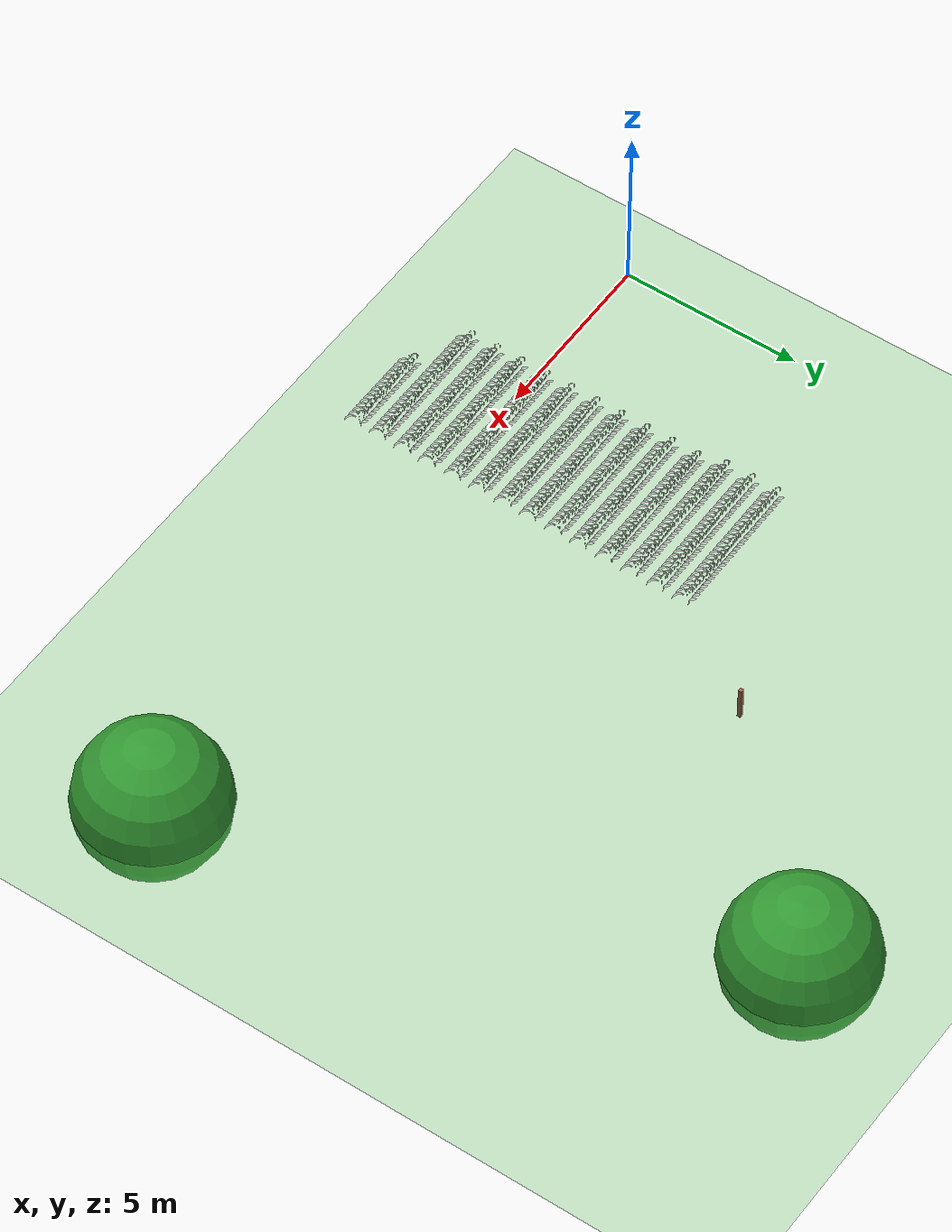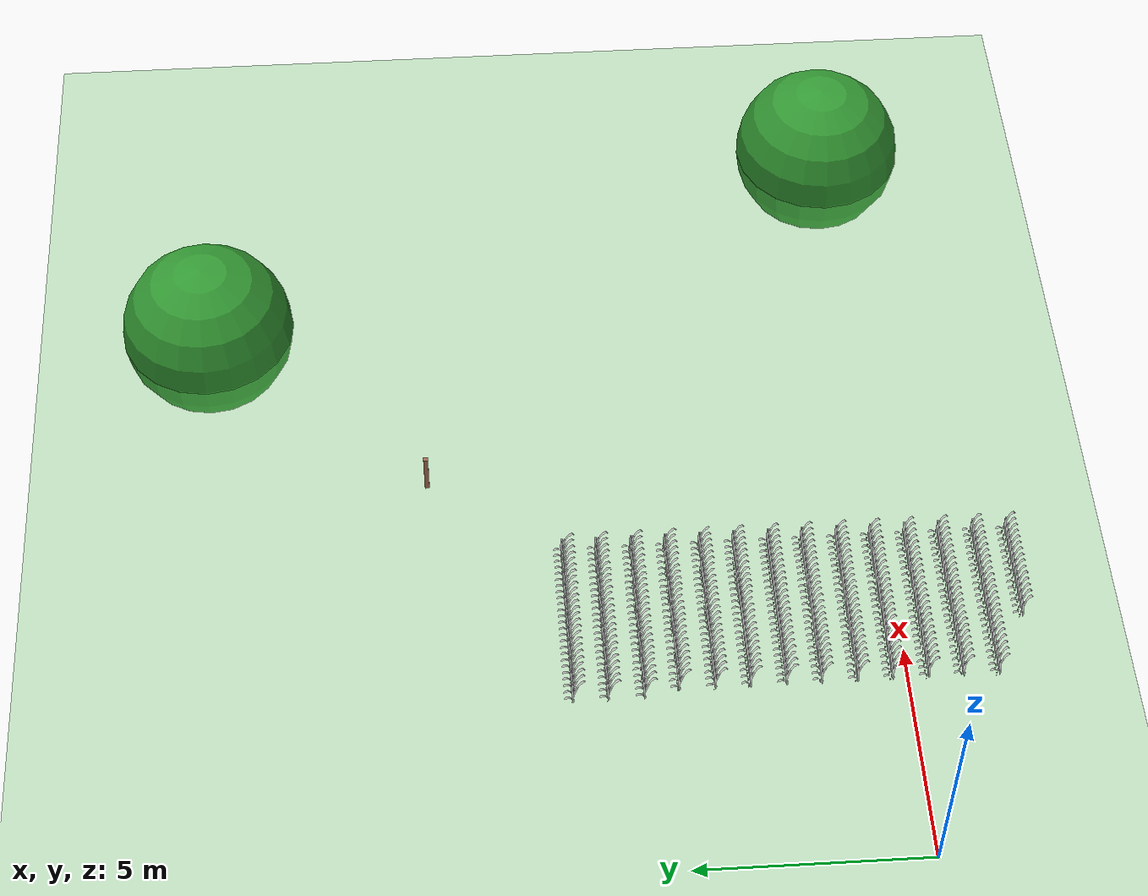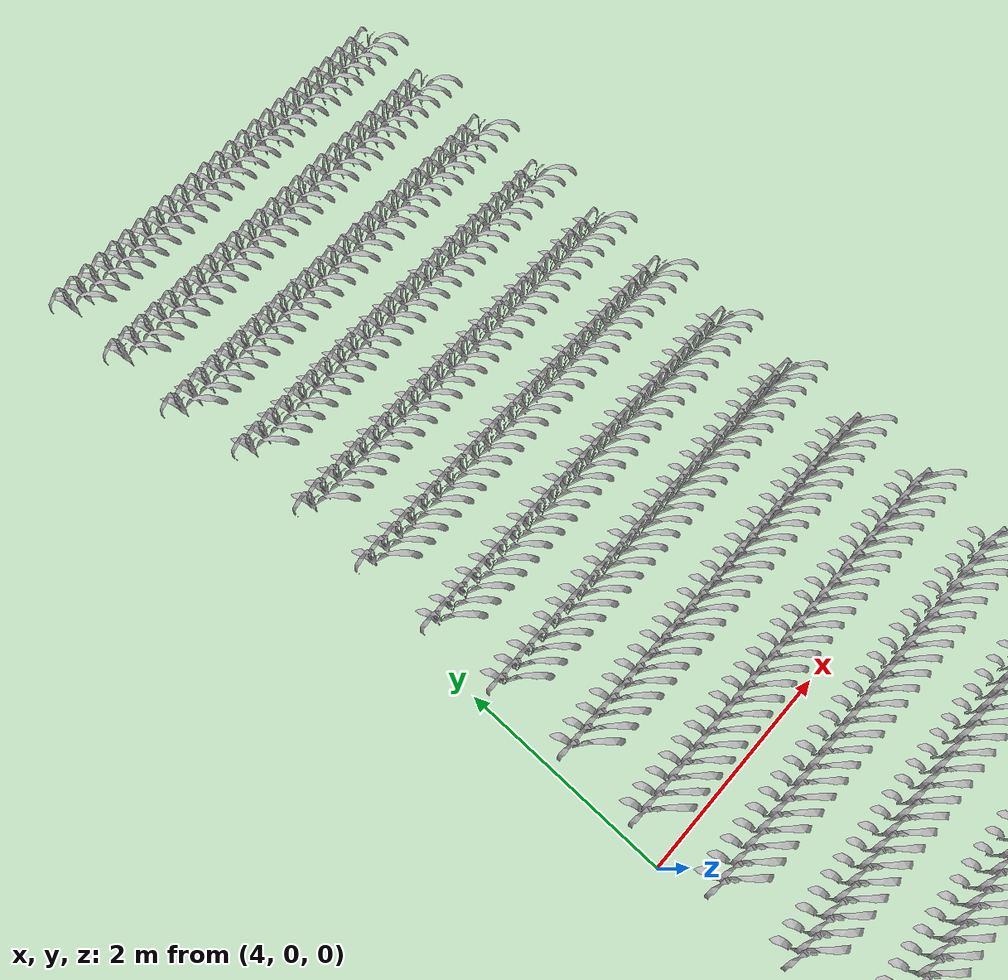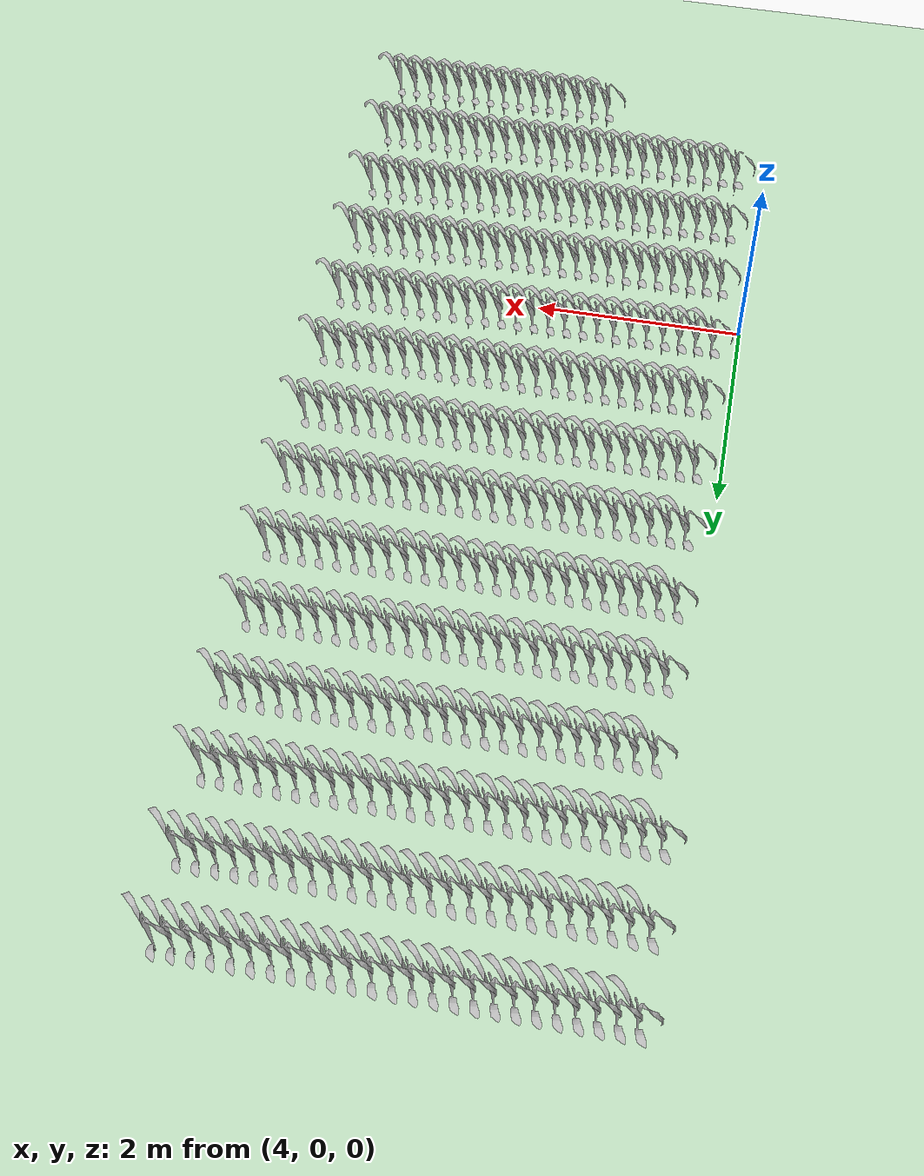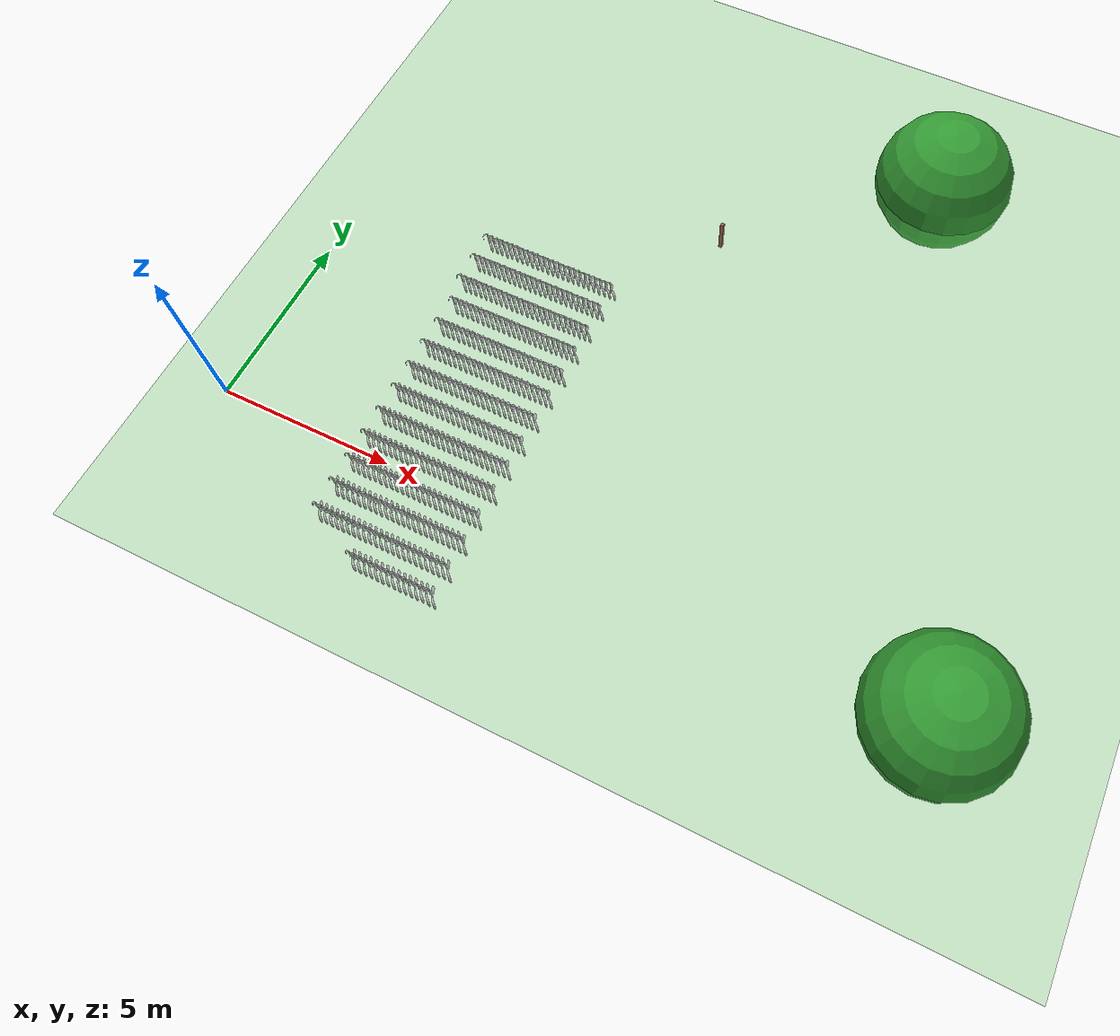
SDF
<sdf version="1.9">
 <world name="farm_world">
  <model name="ground_plane">
   <static>true</static>
   <link name="link">
    <collision name="collision">
     <geometry><plane><normal>0 0 1</normal><size>100 100</size></plane></geometry>
    </collision>
    <visual name="visual">
     <geometry><plane><normal>0 0 1</normal><size>100 100</size></plane></geometry>
     <material>
      <ambient>0.2 0.6 0.2 1</ambient>
      <diffuse>0.3 0.7 0.3 1</diffuse>
      <specular>0.1 0.1 0.1 1</specular>
     </material>
    </visual>
   </link>
  </model>
  <model name="fence_post_1">
   <pose>10 10 0.5 0 0 0</pose>
   <static>true</static>
   <link name="link">
    <collision name="collision"><geometry><box><size>0.1 0.1 1.0</size></box></geometry></collision>
    <visual name="visual">
     <geometry><box><size>0.1 0.1 1.0</size></box></geometry>
     <material><ambient>0.4 0.3 0.2 1</ambient><diffuse>0.6 0.4 0.3 1</diffuse></material>
    </visual>
   </link>
  </model>
  <include><uri>model://maize_01</uri><name>maize_685</name><pose>5.68 -2.62 0 0 0 0</pose></include>
  <include><uri>model://maize_01</uri><name>maize_686</name><pose>5.84 -2.62 0 0 0 0</pose></include>
  <include><uri>model://maize_01</uri><name>maize_687</name><pose>6.00 -2.62 0 0 0 0</pose></include>
  <include><uri>model://maize_01</uri><name>maize_688</name><pose>6.16 -2.62 0 0 0 0</pose></include>
  <include><uri>model://maize_01</uri><name>maize_689</name><pose>6.32 -2.62 0 0 0 0</pose></include>
  <include><uri>model://maize_01</uri><name>maize_690</name><pose>6.48 -2.62 0 0 0 0</pose></include>
  <include><uri>model://maize_01</uri><name>maize_691</name><pose>6.64 -2.62 0 0 0 0</pose></include>
  <include><uri>model://maize_01</uri><name>maize_692</name><pose>6.80 -2.62 0 0 0 0</pose></include>
  <include><uri>model://maize_01</uri><name>maize_693</name><pose>6.96 -2.62 0 0 0 0</pose></include>
  <include><uri>model://maize_01</uri><name>maize_694</name><pose>7.12 -2.62 0 0 0 0</pose></include>
  <include><uri>model://maize_01</uri><name>maize_695</name><pose>7.28 -2.62 0 0 0 0</pose></include>
  <include><uri>model://maize_01</uri><name>maize_696</name><pose>7.44 -2.62 0 0 0 0</pose></include>
  <include><uri>model://maize_01</uri><name>maize_697</name><pose>7.60 -2.62 0 0 0 0</pose></include>
  <include><uri>model://maize_01</uri><name>maize_698</name><pose>7.76 -2.62 0 0 0 0</pose></include>
  <include><uri>model://maize_01</uri><name>maize_699</name><pose>7.92 -2.62 0 0 0 0</pose></include>
  <include><uri>model://maize_01</uri><name>maize_776</name><pose>4.24 -1.88 0 0 0 0</pose></include>
  <include><uri>model://maize_01</uri><name>maize_777</name><pose>4.40 -1.88 0 0 0 0</pose></include>
  <include><uri>model://maize_01</uri><name>maize_778</name><pose>4.56 -1.88 0 0 0 0</pose></include>
  <include><uri>model://maize_01</uri><name>maize_779</name><pose>4.72 -1.88 0 0 0 0</pose></include>
  <include><uri>model://maize_01</uri><name>maize_780</name><pose>4.88 -1.88 0 0 0 0</pose></include>
  <include><uri>model://maize_01</uri><name>maize_781</name><pose>5.04 -1.88 0 0 0 0</pose></include>
  <include><uri>model://maize_01</uri><name>maize_782</name><pose>5.20 -1.88 0 0 0 0</pose></include>
  <include><uri>model://maize_01</uri><name>maize_783</name><pose>5.36 -1.88 0 0 0 0</pose></include>
  <include><uri>model://maize_01</uri><name>maize_784</name><pose>5.52 -1.88 0 0 0 0</pose></include>
  <include><uri>model://maize_01</uri><name>maize_785</name><pose>5.68 -1.88 0 0 0 0</pose></include>
  <include><uri>model://maize_01</uri><name>maize_786</name><pose>5.84 -1.88 0 0 0 0</pose></include>
  <include><uri>model://maize_01</uri><name>maize_787</name><pose>6.00 -1.88 0 0 0 0</pose></include>
  <include><uri>model://maize_01</uri><name>maize_788</name><pose>6.16 -1.88 0 0 0 0</pose></include>
  <include><uri>model://maize_01</uri><name>maize_789</name><pose>6.32 -1.88 0 0 0 0</pose></include>
  <include><uri>model://maize_01</uri><name>maize_790</name><pose>6.48 -1.88 0 0 0 0</pose></include>
  <include><uri>model://maize_01</uri><name>maize_791</name><pose>6.64 -1.88 0 0 0 0</pose></include>
  <include><uri>model://maize_01</uri><name>maize_792</name><pose>6.80 -1.88 0 0 0 0</pose></include>
  <include><uri>model://maize_01</uri><name>maize_793</name><pose>6.96 -1.88 0 0 0 0</pose></include>
  <include><uri>model://maize_01</uri><name>maize_794</name><pose>7.12 -1.88 0 0 0 0</pose></include>
  <include><uri>model://maize_01</uri><name>maize_795</name><pose>7.28 -1.88 0 0 0 0</pose></include>
  <include><uri>model://maize_01</uri><name>maize_796</name><pose>7.44 -1.88 0 0 0 0</pose></include>
  <include><uri>model://maize_01</uri><name>maize_797</name><pose>7.60 -1.88 0 0 0 0</pose></include>
  <include><uri>model://maize_01</uri><name>maize_798</name><pose>7.76 -1.88 0 0 0 0</pose></include>
  <include><uri>model://maize_01</uri><name>maize_799</name><pose>7.92 -1.88 0 0 0 0</pose></include>
  <include><uri>model://maize_01</uri><name>maize_876</name><pose>4.24 -1.12 0 0 0 0</pose></include>
  <include><uri>model://maize_01</uri><name>maize_877</name><pose>4.40 -1.12 0 0 0 0</pose></include>
  <include><uri>model://maize_01</uri><name>maize_878</name><pose>4.56 -1.12 0 0 0 0</pose></include>
  <include><uri>model://maize_01</uri><name>maize_879</name><pose>4.72 -1.12 0 0 0 0</pose></include>
  <include><uri>model://maize_01</uri><name>maize_880</name><pose>4.88 -1.12 0 0 0 0</pose></include>
  <include><uri>model://maize_01</uri><name>maize_881</name><pose>5.04 -1.12 0 0 0 0</pose></include>
  <include><uri>model://maize_01</uri><name>maize_882</name><pose>5.20 -1.12 0 0 0 0</pose></include>
  <include><uri>model://maize_01</uri><name>maize_883</name><pose>5.36 -1.12 0 0 0 0</pose></include>
  <include><uri>model://maize_01</uri><name>maize_884</name><pose>5.52 -1.12 0 0 0 0</pose></include>
  <include><uri>model://maize_01</uri><name>maize_885</name><pose>5.68 -1.12 0 0 0 0</pose></include>
  <include><uri>model://maize_01</uri><name>maize_886</name><pose>5.84 -1.12 0 0 0 0</pose></include>
  <include><uri>model://maize_01</uri><name>maize_887</name><pose>6.00 -1.12 0 0 0 0</pose></include>
  <include><uri>model://maize_01</uri><name>maize_888</name><pose>6.16 -1.12 0 0 0 0</pose></include>
  <include><uri>model://maize_01</uri><name>maize_889</name><pose>6.32 -1.12 0 0 0 0</pose></include>
  <include><uri>model://maize_01</uri><name>maize_890</name><pose>6.48 -1.12 0 0 0 0</pose></include>
  <include><uri>model://maize_01</uri><name>maize_891</name><pose>6.64 -1.12 0 0 0 0</pose></include>
  <include><uri>model://maize_01</uri><name>maize_892</name><pose>6.80 -1.12 0 0 0 0</pose></include>
  <include><uri>model://maize_01</uri><name>maize_893</name><pose>6.96 -1.12 0 0 0 0</pose></include>
  <include><uri>model://maize_01</uri><name>maize_894</name><pose>7.12 -1.12 0 0 0 0</pose></include>
  <include><uri>model://maize_01</uri><name>maize_895</name><pose>7.28 -1.12 0 0 0 0</pose></include>
  <include><uri>model://maize_01</uri><name>maize_896</name><pose>7.44 -1.12 0 0 0 0</pose></include>
  <include><uri>model://maize_01</uri><name>maize_897</name><pose>7.60 -1.12 0 0 0 0</pose></include>
  <include><uri>model://maize_01</uri><name>maize_898</name><pose>7.76 -1.12 0 0 0 0</pose></include>
  <include><uri>model://maize_01</uri><name>maize_899</name><pose>7.92 -1.12 0 0 0 0</pose></include>
  <include><uri>model://maize_01</uri><name>maize_976</name><pose>4.24 -0.38 0 0 0 0</pose></include>
  <include><uri>model://maize_01</uri><name>maize_977</name><pose>4.40 -0.38 0 0 0 0</pose></include>
  <include><uri>model://maize_01</uri><name>maize_978</name><pose>4.56 -0.38 0 0 0 0</pose></include>
  <include><uri>model://maize_01</uri><name>maize_979</name><pose>4.72 -0.38 0 0 0 0</pose></include>
  <include><uri>model://maize_01</uri><name>maize_980</name><pose>4.88 -0.38 0 0 0 0</pose></include>
  <include><uri>model://maize_01</uri><name>maize_981</name><pose>5.04 -0.38 0 0 0 0</pose></include>
  <include><uri>model://maize_01</uri><name>maize_982</name><pose>5.20 -0.38 0 0 0 0</pose></include>
  <include><uri>model://maize_01</uri><name>maize_983</name><pose>5.36 -0.38 0 0 0 0</pose></include>
  <include><uri>model://maize_01</uri><name>maize_984</name><pose>5.52 -0.38 0 0 0 0</pose></include>
  <include><uri>model://maize_01</uri><name>maize_985</name><pose>5.68 -0.38 0 0 0 0</pose></include>
  <include><uri>model://maize_01</uri><name>maize_986</name><pose>5.84 -0.38 0 0 0 0</pose></include>
  <include><uri>model://maize_01</uri><name>maize_987</name><pose>6.00 -0.38 0 0 0 0</pose></include>
  <include><uri>model://maize_01</uri><name>maize_988</name><pose>6.16 -0.38 0 0 0 0</pose></include>
  <include><uri>model://maize_01</uri><name>maize_989</name><pose>6.32 -0.38 0 0 0 0</pose></include>
  <include><uri>model://maize_01</uri><name>maize_990</name><pose>6.48 -0.38 0 0 0 0</pose></include>
  <include><uri>model://maize_01</uri><name>maize_991</name><pose>6.64 -0.38 0 0 0 0</pose></include>
  <include><uri>model://maize_01</uri><name>maize_992</name><pose>6.80 -0.38 0 0 0 0</pose></include>
  <include><uri>model://maize_01</uri><name>maize_993</name><pose>6.96 -0.38 0 0 0 0</pose></include>
  <include><uri>model://maize_01</uri><name>maize_994</name><pose>7.12 -0.38 0 0 0 0</pose></include>
  <include><uri>model://maize_01</uri><name>maize_995</name><pose>7.28 -0.38 0 0 0 0</pose></include>
  <include><uri>model://maize_01</uri><name>maize_996</name><pose>7.44 -0.38 0 0 0 0</pose></include>
  <include><uri>model://maize_01</uri><name>maize_997</name><pose>7.60 -0.38 0 0 0 0</pose></include>
  <include><uri>model://maize_01</uri><name>maize_998</name><pose>7.76 -0.38 0 0 0 0</pose></include>
  <include><uri>model://maize_01</uri><name>maize_999</name><pose>7.92 -0.38 0 0 0 0</pose></include>
  <include><uri>model://maize_01</uri><name>maize_1076</name><pose>4.24 0.38 0 0 0 0</pose></include>
  <include><uri>model://maize_01</uri><name>maize_1077</name><pose>4.40 0.38 0 0 0 0</pose></include>
  <include><uri>model://maize_01</uri><name>maize_1078</name><pose>4.56 0.38 0 0 0 0</pose></include>
  <include><uri>model://maize_01</uri><name>maize_1079</name><pose>4.72 0.38 0 0 0 0</pose></include>
  <include><uri>model://maize_01</uri><name>maize_1080</name><pose>4.88 0.38 0 0 0 0</pose></include>
  <include><uri>model://maize_01</uri><name>maize_1081</name><pose>5.04 0.38 0 0 0 0</pose></include>
  <include><uri>model://maize_01</uri><name>maize_1082</name><pose>5.20 0.38 0 0 0 0</pose></include>
  <include><uri>model://maize_01</uri><name>maize_1083</name><pose>5.36 0.38 0 0 0 0</pose></include>
  <include><uri>model://maize_01</uri><name>maize_1084</name><pose>5.52 0.38 0 0 0 0</pose></include>
  <include><uri>model://maize_01</uri><name>maize_1085</name><pose>5.68 0.38 0 0 0 0</pose></include>
  <include><uri>model://maize_01</uri><name>maize_1086</name><pose>5.84 0.38 0 0 0 0</pose></include>
  <include><uri>model://maize_01</uri><name>maize_1087</name><pose>6.00 0.38 0 0 0 0</pose></include>
  <include><uri>model://maize_01</uri><name>maize_1088</name><pose>6.16 0.38 0 0 0 0</pose></include>
  <include><uri>model://maize_01</uri><name>maize_1089</name><pose>6.32 0.38 0 0 0 0</pose></include>
  <include><uri>model://maize_01</uri><name>maize_1090</name><pose>6.48 0.38 0 0 0 0</pose></include>
  <include><uri>model://maize_01</uri><name>maize_1091</name><pose>6.64 0.38 0 0 0 0</pose></include>
  <include><uri>model://maize_01</uri><name>maize_1092</name><pose>6.80 0.38 0 0 0 0</pose></include>
  <include><uri>model://maize_01</uri><name>maize_1093</name><pose>6.96 0.38 0 0 0 0</pose></include>
  <include><uri>model://maize_01</uri><name>maize_1094</name><pose>7.12 0.38 0 0 0 0</pose></include>
  <include><uri>model://maize_01</uri><name>maize_1095</name><pose>7.28 0.38 0 0 0 0</pose></include>
  <include><uri>model://maize_01</uri><name>maize_1096</name><pose>7.44 0.38 0 0 0 0</pose></include>
  <include><uri>model://maize_01</uri><name>maize_1097</name><pose>7.60 0.38 0 0 0 0</pose></include>
  <include><uri>model://maize_01</uri><name>maize_1098</name><pose>7.76 0.38 0 0 0 0</pose></include>
  <include><uri>model://maize_01</uri><name>maize_1099</name><pose>7.92 0.38 0 0 0 0</pose></include>
  <include><uri>model://maize_01</uri><name>maize_1176</name><pose>4.24 1.12 0 0 0 0</pose></include>
  <include><uri>model://maize_01</uri><name>maize_1177</name><pose>4.40 1.12 0 0 0 0</pose></include>
  <include><uri>model://maize_01</uri><name>maize_1178</name><pose>4.56 1.12 0 0 0 0</pose></include>
  <include><uri>model://maize_01</uri><name>maize_1179</name><pose>4.72 1.12 0 0 0 0</pose></include>
  <include><uri>model://maize_01</uri><name>maize_1180</name><pose>4.88 1.12 0 0 0 0</pose></include>
  <include><uri>model://maize_01</uri><name>maize_1181</name><pose>5.04 1.12 0 0 0 0</pose></include>
  <include><uri>model://maize_01</uri><name>maize_1182</name><pose>5.20 1.12 0 0 0 0</pose></include>
  <include><uri>model://maize_01</uri><name>maize_1183</name><pose>5.36 1.12 0 0 0 0</pose></include>
  <include><uri>model://maize_01</uri><name>maize_1184</name><pose>5.52 1.12 0 0 0 0</pose></include>
  <include><uri>model://maize_01</uri><name>maize_1185</name><pose>5.68 1.12 0 0 0 0</pose></include>
  <include><uri>model://maize_01</uri><name>maize_1186</name><pose>5.84 1.12 0 0 0 0</pose></include>
  <include><uri>model://maize_01</uri><name>maize_1187</name><pose>6.00 1.12 0 0 0 0</pose></include>
  <include><uri>model://maize_01</uri><name>maize_1188</name><pose>6.16 1.12 0 0 0 0</pose></include>
  <include><uri>model://maize_01</uri><name>maize_1189</name><pose>6.32 1.12 0 0 0 0</pose></include>
  <include><uri>model://maize_01</uri><name>maize_1190</name><pose>6.48 1.12 0 0 0 0</pose></include>
  <include><uri>model://maize_01</uri><name>maize_1191</name><pose>6.64 1.12 0 0 0 0</pose></include>
  <include><uri>model://maize_01</uri><name>maize_1192</name><pose>6.80 1.12 0 0 0 0</pose></include>
  <include><uri>model://maize_01</uri><name>maize_1193</name><pose>6.96 1.12 0 0 0 0</pose></include>
  <include><uri>model://maize_01</uri><name>maize_1194</name><pose>7.12 1.12 0 0 0 0</pose></include>
  <include><uri>model://maize_01</uri><name>maize_1195</name><pose>7.28 1.12 0 0 0 0</pose></include>
  <include><uri>model://maize_01</uri><name>maize_1196</name><pose>7.44 1.12 0 0 0 0</pose></include>
  <include><uri>model://maize_01</uri><name>maize_1197</name><pose>7.60 1.12 0 0 0 0</pose></include>
  <include><uri>model://maize_01</uri><name>maize_1198</name><pose>7.76 1.12 0 0 0 0</pose></include>
  <include><uri>model://maize_01</uri><name>maize_1199</name><pose>7.92 1.12 0 0 0 0</pose></include>
  <include><uri>model://maize_01</uri><name>maize_1276</name><pose>4.24 1.88 0 0 0 0</pose></include>
  <include><uri>model://maize_01</uri><name>maize_1277</name><pose>4.40 1.88 0 0 0 0</pose></include>
  <include><uri>model://maize_01</uri><name>maize_1278</name><pose>4.56 1.88 0 0 0 0</pose></include>
  <include><uri>model://maize_01</uri><name>maize_1279</name><pose>4.72 1.88 0 0 0 0</pose></include>
  <include><uri>model://maize_01</uri><name>maize_1280</name><pose>4.88 1.88 0 0 0 0</pose></include>
  <include><uri>model://maize_01</uri><name>maize_1281</name><pose>5.04 1.88 0 0 0 0</pose></include>
  <include><uri>model://maize_01</uri><name>maize_1282</name><pose>5.20 1.88 0 0 0 0</pose></include>
  <include><uri>model://maize_01</uri><name>maize_1283</name><pose>5.36 1.88 0 0 0 0</pose></include>
  <include><uri>model://maize_01</uri><name>maize_1284</name><pose>5.52 1.88 0 0 0 0</pose></include>
  <include><uri>model://maize_01</uri><name>maize_1285</name><pose>5.68 1.88 0 0 0 0</pose></include>
  <include><uri>model://maize_01</uri><name>maize_1286</name><pose>5.84 1.88 0 0 0 0</pose></include>
  <include><uri>model://maize_01</uri><name>maize_1287</name><pose>6.00 1.88 0 0 0 0</pose></include>
  <include><uri>model://maize_01</uri><name>maize_1288</name><pose>6.16 1.88 0 0 0 0</pose></include>
  <include><uri>model://maize_01</uri><name>maize_1289</name><pose>6.32 1.88 0 0 0 0</pose></include>
  <include><uri>model://maize_01</uri><name>maize_1290</name><pose>6.48 1.88 0 0 0 0</pose></include>
  <include><uri>model://maize_01</uri><name>maize_1291</name><pose>6.64 1.88 0 0 0 0</pose></include>
  <include><uri>model://maize_01</uri><name>maize_1292</name><pose>6.80 1.88 0 0 0 0</pose></include>
  <include><uri>model://maize_01</uri><name>maize_1293</name><pose>6.96 1.88 0 0 0 0</pose></include>
  <include><uri>model://maize_01</uri><name>maize_1294</name><pose>7.12 1.88 0 0 0 0</pose></include>
  <include><uri>model://maize_01</uri><name>maize_1295</name><pose>7.28 1.88 0 0 0 0</pose></include>
  <include><uri>model://maize_01</uri><name>maize_1296</name><pose>7.44 1.88 0 0 0 0</pose></include>
  <include><uri>model://maize_01</uri><name>maize_1297</name><pose>7.60 1.88 0 0 0 0</pose></include>
  <include><uri>model://maize_01</uri><name>maize_1298</name><pose>7.76 1.88 0 0 0 0</pose></include>
  <include><uri>model://maize_01</uri><name>maize_1299</name><pose>7.92 1.88 0 0 0 0</pose></include>
  <include><uri>model://maize_01</uri><name>maize_1376</name><pose>4.24 2.62 0 0 0 0</pose></include>
  <include><uri>model://maize_01</uri><name>maize_1377</name><pose>4.40 2.62 0 0 0 0</pose></include>
  <include><uri>model://maize_01</uri><name>maize_1378</name><pose>4.56 2.62 0 0 0 0</pose></include>
  <include><uri>model://maize_01</uri><name>maize_1379</name><pose>4.72 2.62 0 0 0 0</pose></include>
  <include><uri>model://maize_01</uri><name>maize_1380</name><pose>4.88 2.62 0 0 0 0</pose></include>
  <include><uri>model://maize_01</uri><name>maize_1381</name><pose>5.04 2.62 0 0 0 0</pose></include>
  <include><uri>model://maize_01</uri><name>maize_1382</name><pose>5.20 2.62 0 0 0 0</pose></include>
  <include><uri>model://maize_01</uri><name>maize_1383</name><pose>5.36 2.62 0 0 0 0</pose></include>
  <include><uri>model://maize_01</uri><name>maize_1384</name><pose>5.52 2.62 0 0 0 0</pose></include>
  <include><uri>model://maize_01</uri><name>maize_1385</name><pose>5.68 2.62 0 0 0 0</pose></include>
  <include><uri>model://maize_01</uri><name>maize_1386</name><pose>5.84 2.62 0 0 0 0</pose></include>
  <include><uri>model://maize_01</uri><name>maize_1387</name><pose>6.00 2.62 0 0 0 0</pose></include>
  <include><uri>model://maize_01</uri><name>maize_1388</name><pose>6.16 2.62 0 0 0 0</pose></include>
  <include><uri>model://maize_01</uri><name>maize_1389</name><pose>6.32 2.62 0 0 0 0</pose></include>
  <include><uri>model://maize_01</uri><name>maize_1390</name><pose>6.48 2.62 0 0 0 0</pose></include>
  <include><uri>model://maize_01</uri><name>maize_1391</name><pose>6.64 2.62 0 0 0 0</pose></include>
  <include><uri>model://maize_01</uri><name>maize_1392</name><pose>6.80 2.62 0 0 0 0</pose></include>
  <include><uri>model://maize_01</uri><name>maize_1393</name><pose>6.96 2.62 0 0 0 0</pose></include>
  <include><uri>model://maize_01</uri><name>maize_1394</name><pose>7.12 2.62 0 0 0 0</pose></include>
  <include><uri>model://maize_01</uri><name>maize_1395</name><pose>7.28 2.62 0 0 0 0</pose></include>
  <include><uri>model://maize_01</uri><name>maize_1396</name><pose>7.44 2.62 0 0 0 0</pose></include>
  <include><uri>model://maize_01</uri><name>maize_1397</name><pose>7.60 2.62 0 0 0 0</pose></include>
  <include><uri>model://maize_01</uri><name>maize_1398</name><pose>7.76 2.62 0 0 0 0</pose></include>
  <include><uri>model://maize_01</uri><name>maize_1399</name><pose>7.92 2.62 0 0 0 0</pose></include>
  <include><uri>model://maize_01</uri><name>maize_1476</name><pose>4.24 3.38 0 0 0 0</pose></include>
  <include><uri>model://maize_01</uri><name>maize_1477</name><pose>4.40 3.38 0 0 0 0</pose></include>
  <include><uri>model://maize_01</uri><name>maize_1478</name><pose>4.56 3.38 0 0 0 0</pose></include>
  <include><uri>model://maize_01</uri><name>maize_1479</name><pose>4.72 3.38 0 0 0 0</pose></include>
  <include><uri>model://maize_01</uri><name>maize_1480</name><pose>4.88 3.38 0 0 0 0</pose></include>
  <include><uri>model://maize_01</uri><name>maize_1481</name><pose>5.04 3.38 0 0 0 0</pose></include>
  <include><uri>model://maize_01</uri><name>maize_1482</name><pose>5.20 3.38 0 0 0 0</pose></include>
  <include><uri>model://maize_01</uri><name>maize_1483</name><pose>5.36 3.38 0 0 0 0</pose></include>
  <include><uri>model://maize_01</uri><name>maize_1484</name><pose>5.52 3.38 0 0 0 0</pose></include>
  <include><uri>model://maize_01</uri><name>maize_1485</name><pose>5.68 3.38 0 0 0 0</pose></include>
  <include><uri>model://maize_01</uri><name>maize_1486</name><pose>5.84 3.38 0 0 0 0</pose></include>
  <include><uri>model://maize_01</uri><name>maize_1487</name><pose>6.00 3.38 0 0 0 0</pose></include>
  <include><uri>model://maize_01</uri><name>maize_1488</name><pose>6.16 3.38 0 0 0 0</pose></include>
  <include><uri>model://maize_01</uri><name>maize_1489</name><pose>6.32 3.38 0 0 0 0</pose></include>
  <include><uri>model://maize_01</uri><name>maize_1490</name><pose>6.48 3.38 0 0 0 0</pose></include>
  <include><uri>model://maize_01</uri><name>maize_1491</name><pose>6.64 3.38 0 0 0 0</pose></include>
  <include><uri>model://maize_01</uri><name>maize_1492</name><pose>6.80 3.38 0 0 0 0</pose></include>
  <include><uri>model://maize_01</uri><name>maize_1493</name><pose>6.96 3.38 0 0 0 0</pose></include>
  <include><uri>model://maize_01</uri><name>maize_1494</name><pose>7.12 3.38 0 0 0 0</pose></include>
  <include><uri>model://maize_01</uri><name>maize_1495</name><pose>7.28 3.38 0 0 0 0</pose></include>
  <include><uri>model://maize_01</uri><name>maize_1496</name><pose>7.44 3.38 0 0 0 0</pose></include>
  <include><uri>model://maize_01</uri><name>maize_1497</name><pose>7.60 3.38 0 0 0 0</pose></include>
  <include><uri>model://maize_01</uri><name>maize_1498</name><pose>7.76 3.38 0 0 0 0</pose></include>
  <include><uri>model://maize_01</uri><name>maize_1499</name><pose>7.92 3.38 0 0 0 0</pose></include>
  <include><uri>model://maize_01</uri><name>maize_1576</name><pose>4.24 4.12 0 0 0 0</pose></include>
  <include><uri>model://maize_01</uri><name>maize_1577</name><pose>4.40 4.12 0 0 0 0</pose></include>
  <include><uri>model://maize_01</uri><name>maize_1578</name><pose>4.56 4.12 0 0 0 0</pose></include>
  <include><uri>model://maize_01</uri><name>maize_1579</name><pose>4.72 4.12 0 0 0 0</pose></include>
  <include><uri>model://maize_01</uri><name>maize_1580</name><pose>4.88 4.12 0 0 0 0</pose></include>
  <include><uri>model://maize_01</uri><name>maize_1581</name><pose>5.04 4.12 0 0 0 0</pose></include>
  <include><uri>model://maize_01</uri><name>maize_1582</name><pose>5.20 4.12 0 0 0 0</pose></include>
  <include><uri>model://maize_01</uri><name>maize_1583</name><pose>5.36 4.12 0 0 0 0</pose></include>
  <include><uri>model://maize_01</uri><name>maize_1584</name><pose>5.52 4.12 0 0 0 0</pose></include>
  <include><uri>model://maize_01</uri><name>maize_1585</name><pose>5.68 4.12 0 0 0 0</pose></include>
  <include><uri>model://maize_01</uri><name>maize_1586</name><pose>5.84 4.12 0 0 0 0</pose></include>
  <include><uri>model://maize_01</uri><name>maize_1587</name><pose>6.00 4.12 0 0 0 0</pose></include>
  <include><uri>model://maize_01</uri><name>maize_1588</name><pose>6.16 4.12 0 0 0 0</pose></include>
  <include><uri>model://maize_01</uri><name>maize_1589</name><pose>6.32 4.12 0 0 0 0</pose></include>
  <include><uri>model://maize_01</uri><name>maize_1590</name><pose>6.48 4.12 0 0 0 0</pose></include>
  <include><uri>model://maize_01</uri><name>maize_1591</name><pose>6.64 4.12 0 0 0 0</pose></include>
  <include><uri>model://maize_01</uri><name>maize_1592</name><pose>6.80 4.12 0 0 0 0</pose></include>
  <include><uri>model://maize_01</uri><name>maize_1593</name><pose>6.96 4.12 0 0 0 0</pose></include>
  <include><uri>model://maize_01</uri><name>maize_1594</name><pose>7.12 4.12 0 0 0 0</pose></include>
  <include><uri>model://maize_01</uri><name>maize_1595</name><pose>7.28 4.12 0 0 0 0</pose></include>
  <include><uri>model://maize_01</uri><name>maize_1596</name><pose>7.44 4.12 0 0 0 0</pose></include>
  <include><uri>model://maize_01</uri><name>maize_1597</name><pose>7.60 4.12 0 0 0 0</pose></include>
  <include><uri>model://maize_01</uri><name>maize_1598</name><pose>7.76 4.12 0 0 0 0</pose></include>
  <include><uri>model://maize_01</uri><name>maize_1599</name><pose>7.92 4.12 0 0 0 0</pose></include>
  <include><uri>model://maize_01</uri><name>maize_1676</name><pose>4.24 4.88 0 0 0 0</pose></include>
  <include><uri>model://maize_01</uri><name>maize_1677</name><pose>4.40 4.88 0 0 0 0</pose></include>
  <include><uri>model://maize_01</uri><name>maize_1678</name><pose>4.56 4.88 0 0 0 0</pose></include>
  <include><uri>model://maize_01</uri><name>maize_1679</name><pose>4.72 4.88 0 0 0 0</pose></include>
  <include><uri>model://maize_01</uri><name>maize_1680</name><pose>4.88 4.88 0 0 0 0</pose></include>
  <include><uri>model://maize_01</uri><name>maize_1681</name><pose>5.04 4.88 0 0 0 0</pose></include>
  <include><uri>model://maize_01</uri><name>maize_1682</name><pose>5.20 4.88 0 0 0 0</pose></include>
  <include><uri>model://maize_01</uri><name>maize_1683</name><pose>5.36 4.88 0 0 0 0</pose></include>
  <include><uri>model://maize_01</uri><name>maize_1684</name><pose>5.52 4.88 0 0 0 0</pose></include>
  <include><uri>model://maize_01</uri><name>maize_1685</name><pose>5.68 4.88 0 0 0 0</pose></include>
  <include><uri>model://maize_01</uri><name>maize_1686</name><pose>5.84 4.88 0 0 0 0</pose></include>
  <include><uri>model://maize_01</uri><name>maize_1687</name><pose>6.00 4.88 0 0 0 0</pose></include>
  <include><uri>model://maize_01</uri><name>maize_1688</name><pose>6.16 4.88 0 0 0 0</pose></include>
  <include><uri>model://maize_01</uri><name>maize_1689</name><pose>6.32 4.88 0 0 0 0</pose></include>
  <include><uri>model://maize_01</uri><name>maize_1690</name><pose>6.48 4.88 0 0 0 0</pose></include>
  <include><uri>model://maize_01</uri><name>maize_1691</name><pose>6.64 4.88 0 0 0 0</pose></include>
  <include><uri>model://maize_01</uri><name>maize_1692</name><pose>6.80 4.88 0 0 0 0</pose></include>
  <include><uri>model://maize_01</uri><name>maize_1693</name><pose>6.96 4.88 0 0 0 0</pose></include>
  <include><uri>model://maize_01</uri><name>maize_1694</name><pose>7.12 4.88 0 0 0 0</pose></include>
  <include><uri>model://maize_01</uri><name>maize_1695</name><pose>7.28 4.88 0 0 0 0</pose></include>
  <include><uri>model://maize_01</uri><name>maize_1696</name><pose>7.44 4.88 0 0 0 0</pose></include>
  <include><uri>model://maize_01</uri><name>maize_1697</name><pose>7.60 4.88 0 0 0 0</pose></include>
  <include><uri>model://maize_01</uri><name>maize_1698</name><pose>7.76 4.88 0 0 0 0</pose></include>
  <include><uri>model://maize_01</uri><name>maize_1699</name><pose>7.92 4.88 0 0 0 0</pose></include>
  <include><uri>model://maize_01</uri><name>maize_1775</name><pose>4.08 5.62 0 0 0 0</pose></include>
  <include><uri>model://maize_01</uri><name>maize_1776</name><pose>4.24 5.62 0 0 0 0</pose></include>
  <include><uri>model://maize_01</uri><name>maize_1777</name><pose>4.40 5.62 0 0 0 0</pose></include>
  <include><uri>model://maize_01</uri><name>maize_1778</name><pose>4.56 5.62 0 0 0 0</pose></include>
  <include><uri>model://maize_01</uri><name>maize_1779</name><pose>4.72 5.62 0 0 0 0</pose></include>
  <include><uri>model://maize_01</uri><name>maize_1780</name><pose>4.88 5.62 0 0 0 0</pose></include>
  <include><uri>model://maize_01</uri><name>maize_1781</name><pose>5.04 5.62 0 0 0 0</pose></include>
  <include><uri>model://maize_01</uri><name>maize_1782</name><pose>5.20 5.62 0 0 0 0</pose></include>
  <include><uri>model://maize_01</uri><name>maize_1783</name><pose>5.36 5.62 0 0 0 0</pose></include>
  <include><uri>model://maize_01</uri><name>maize_1784</name><pose>5.52 5.62 0 0 0 0</pose></include>
  <include><uri>model://maize_01</uri><name>maize_1785</name><pose>5.68 5.62 0 0 0 0</pose></include>
  <include><uri>model://maize_01</uri><name>maize_1786</name><pose>5.84 5.62 0 0 0 0</pose></include>
  <include><uri>model://maize_01</uri><name>maize_1787</name><pose>6.00 5.62 0 0 0 0</pose></include>
  <include><uri>model://maize_01</uri><name>maize_1788</name><pose>6.16 5.62 0 0 0 0</pose></include>
  <include><uri>model://maize_01</uri><name>maize_1789</name><pose>6.32 5.62 0 0 0 0</pose></include>
  <include><uri>model://maize_01</uri><name>maize_1790</name><pose>6.48 5.62 0 0 0 0</pose></include>
  <include><uri>model://maize_01</uri><name>maize_1791</name><pose>6.64 5.62 0 0 0 0</pose></include>
  <include><uri>model://maize_01</uri><name>maize_1792</name><pose>6.80 5.62 0 0 0 0</pose></include>
  <include><uri>model://maize_01</uri><name>maize_1793</name><pose>6.96 5.62 0 0 0 0</pose></include>
  <include><uri>model://maize_01</uri><name>maize_1794</name><pose>7.12 5.62 0 0 0 0</pose></include>
  <include><uri>model://maize_01</uri><name>maize_1795</name><pose>7.28 5.62 0 0 0 0</pose></include>
  <include><uri>model://maize_01</uri><name>maize_1796</name><pose>7.44 5.62 0 0 0 0</pose></include>
  <include><uri>model://maize_01</uri><name>maize_1797</name><pose>7.60 5.62 0 0 0 0</pose></include>
  <include><uri>model://maize_01</uri><name>maize_1798</name><pose>7.76 5.62 0 0 0 0</pose></include>
  <include><uri>model://maize_01</uri><name>maize_1799</name><pose>7.92 5.62 0 0 0 0</pose></include>
  <include><uri>model://maize_01</uri><name>maize_1875</name><pose>4.08 6.38 0 0 0 0</pose></include>
  <include><uri>model://maize_01</uri><name>maize_1876</name><pose>4.24 6.38 0 0 0 0</pose></include>
  <include><uri>model://maize_01</uri><name>maize_1877</name><pose>4.40 6.38 0 0 0 0</pose></include>
  <include><uri>model://maize_01</uri><name>maize_1878</name><pose>4.56 6.38 0 0 0 0</pose></include>
  <include><uri>model://maize_01</uri><name>maize_1879</name><pose>4.72 6.38 0 0 0 0</pose></include>
  <include><uri>model://maize_01</uri><name>maize_1880</name><pose>4.88 6.38 0 0 0 0</pose></include>
  <include><uri>model://maize_01</uri><name>maize_1881</name><pose>5.04 6.38 0 0 0 0</pose></include>
  <include><uri>model://maize_01</uri><name>maize_1882</name><pose>5.20 6.38 0 0 0 0</pose></include>
  <include><uri>model://maize_01</uri><name>maize_1883</name><pose>5.36 6.38 0 0 0 0</pose></include>
  <include><uri>model://maize_01</uri><name>maize_1884</name><pose>5.52 6.38 0 0 0 0</pose></include>
  <include><uri>model://maize_01</uri><name>maize_1885</name><pose>5.68 6.38 0 0 0 0</pose></include>
  <include><uri>model://maize_01</uri><name>maize_1886</name><pose>5.84 6.38 0 0 0 0</pose></include>
  <include><uri>model://maize_01</uri><name>maize_1887</name><pose>6.00 6.38 0 0 0 0</pose></include>
  <include><uri>model://maize_01</uri><name>maize_1888</name><pose>6.16 6.38 0 0 0 0</pose></include>
  <include><uri>model://maize_01</uri><name>maize_1889</name><pose>6.32 6.38 0 0 0 0</pose></include>
  <include><uri>model://maize_01</uri><name>maize_1890</name><pose>6.48 6.38 0 0 0 0</pose></include>
  <include><uri>model://maize_01</uri><name>maize_1891</name><pose>6.64 6.38 0 0 0 0</pose></include>
  <include><uri>model://maize_01</uri><name>maize_1892</name><pose>6.80 6.38 0 0 0 0</pose></include>
  <include><uri>model://maize_01</uri><name>maize_1893</name><pose>6.96 6.38 0 0 0 0</pose></include>
  <include><uri>model://maize_01</uri><name>maize_1894</name><pose>7.12 6.38 0 0 0 0</pose></include>
  <include><uri>model://maize_01</uri><name>maize_1895</name><pose>7.28 6.38 0 0 0 0</pose></include>
  <include><uri>model://maize_01</uri><name>maize_1896</name><pose>7.44 6.38 0 0 0 0</pose></include>
  <include><uri>model://maize_01</uri><name>maize_1897</name><pose>7.60 6.38 0 0 0 0</pose></include>
  <include><uri>model://maize_01</uri><name>maize_1898</name><pose>7.76 6.38 0 0 0 0</pose></include>
  <include><uri>model://maize_01</uri><name>maize_1899</name><pose>7.92 6.38 0 0 0 0</pose></include>
  <include><uri>model://maize_01</uri><name>maize_1975</name><pose>4.08 7.12 0 0 0 0</pose></include>
  <include><uri>model://maize_01</uri><name>maize_1976</name><pose>4.24 7.12 0 0 0 0</pose></include>
  <include><uri>model://maize_01</uri><name>maize_1977</name><pose>4.40 7.12 0 0 0 0</pose></include>
  <include><uri>model://maize_01</uri><name>maize_1978</name><pose>4.56 7.12 0 0 0 0</pose></include>
  <include><uri>model://maize_01</uri><name>maize_1979</name><pose>4.72 7.12 0 0 0 0</pose></include>
  <include><uri>model://maize_01</uri><name>maize_1980</name><pose>4.88 7.12 0 0 0 0</pose></include>
  <include><uri>model://maize_01</uri><name>maize_1981</name><pose>5.04 7.12 0 0 0 0</pose></include>
  <include><uri>model://maize_01</uri><name>maize_1982</name><pose>5.20 7.12 0 0 0 0</pose></include>
  <include><uri>model://maize_01</uri><name>maize_1983</name><pose>5.36 7.12 0 0 0 0</pose></include>
  <include><uri>model://maize_01</uri><name>maize_1984</name><pose>5.52 7.12 0 0 0 0</pose></include>
  <include><uri>model://maize_01</uri><name>maize_1985</name><pose>5.68 7.12 0 0 0 0</pose></include>
  <include><uri>model://maize_01</uri><name>maize_1986</name><pose>5.84 7.12 0 0 0 0</pose></include>
  <include><uri>model://maize_01</uri><name>maize_1987</name><pose>6.00 7.12 0 0 0 0</pose></include>
  <include><uri>model://maize_01</uri><name>maize_1988</name><pose>6.16 7.12 0 0 0 0</pose></include>
  <include><uri>model://maize_01</uri><name>maize_1989</name><pose>6.32 7.12 0 0 0 0</pose></include>
  <include><uri>model://maize_01</uri><name>maize_1990</name><pose>6.48 7.12 0 0 0 0</pose></include>
  <include><uri>model://maize_01</uri><name>maize_1991</name><pose>6.64 7.12 0 0 0 0</pose></include>
  <include><uri>model://maize_01</uri><name>maize_1992</name><pose>6.80 7.12 0 0 0 0</pose></include>
  <include><uri>model://maize_01</uri><name>maize_1993</name><pose>6.96 7.12 0 0 0 0</pose></include>
  <include><uri>model://maize_01</uri><name>maize_1994</name><pose>7.12 7.12 0 0 0 0</pose></include>
  <include><uri>model://maize_01</uri><name>maize_1995</name><pose>7.28 7.12 0 0 0 0</pose></include>
  <include><uri>model://maize_01</uri><name>maize_1996</name><pose>7.44 7.12 0 0 0 0</pose></include>
  <include><uri>model://maize_01</uri><name>maize_1997</name><pose>7.60 7.12 0 0 0 0</pose></include>
  <include><uri>model://maize_01</uri><name>maize_1998</name><pose>7.76 7.12 0 0 0 0</pose></include>
  <include><uri>model://maize_01</uri><name>maize_1999</name><pose>7.92 7.12 0 0 0 0</pose></include>
  <include><uri>model://big_tree</uri><name>tree_1</name><pose>15 15 0 0 0 0</pose></include>
  <include><uri>model://big_tree</uri><name>tree_5</name><pose>20 0 0 0 0 0</pose></include>
 </world>
</sdf>
